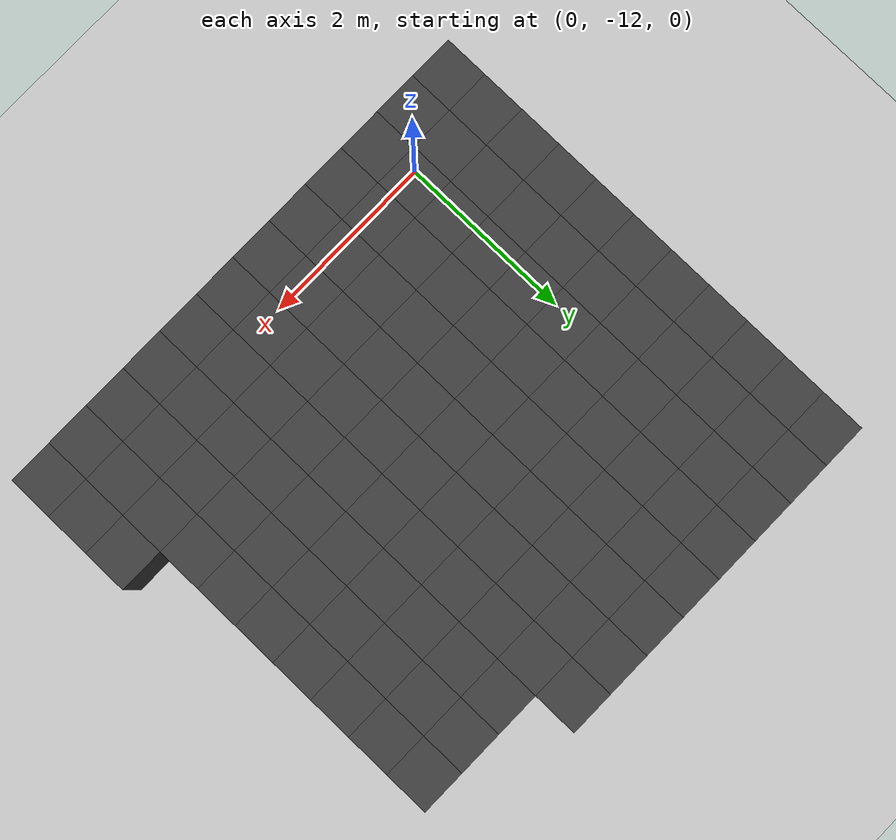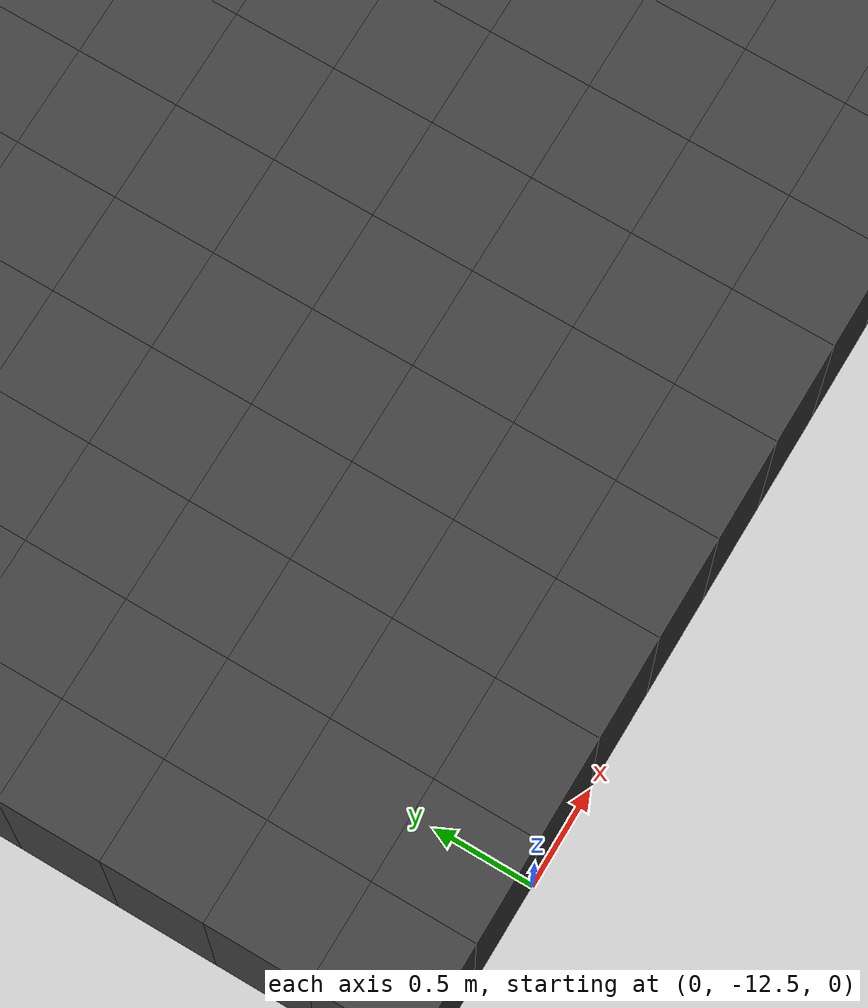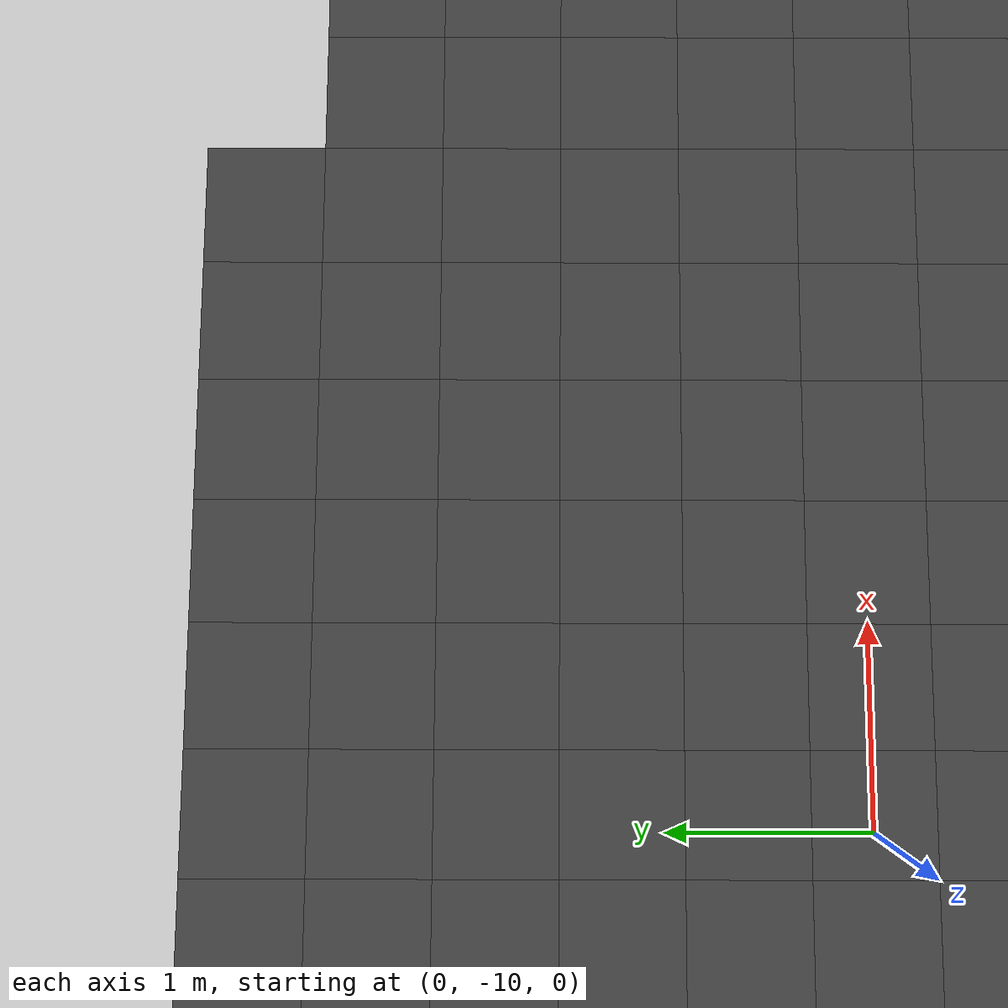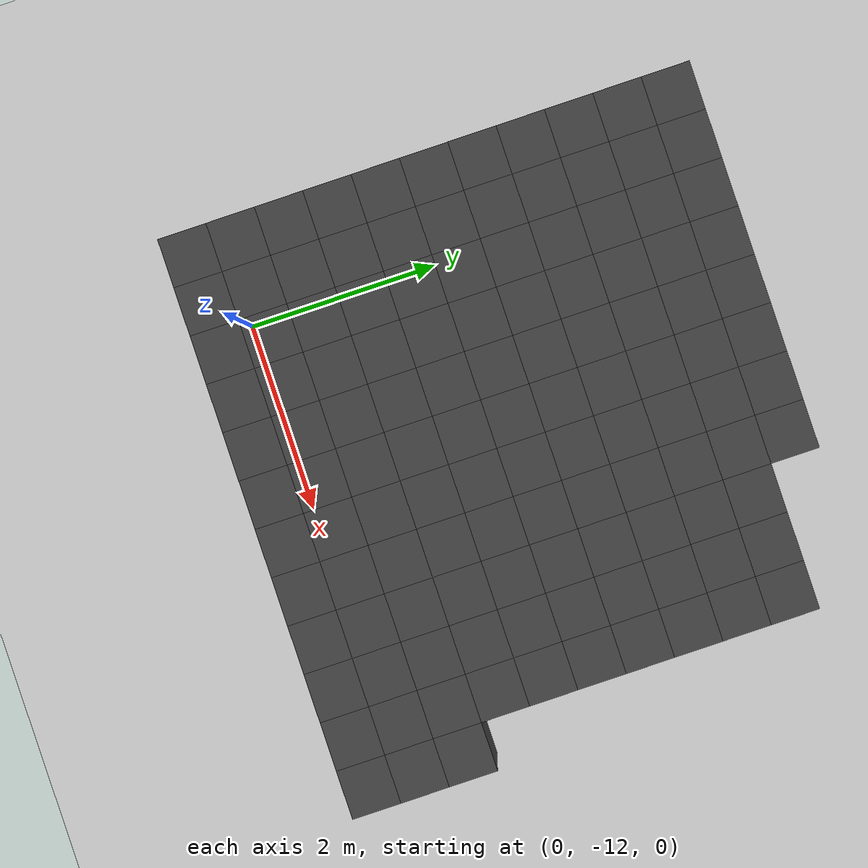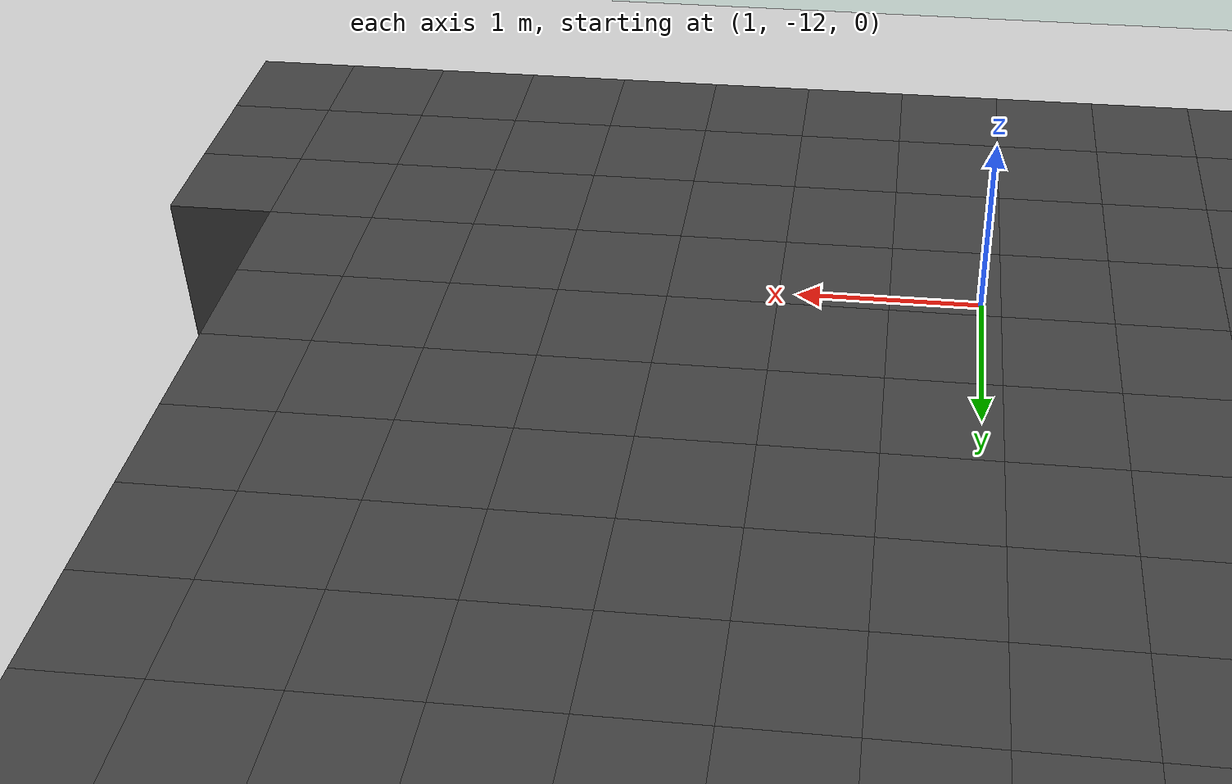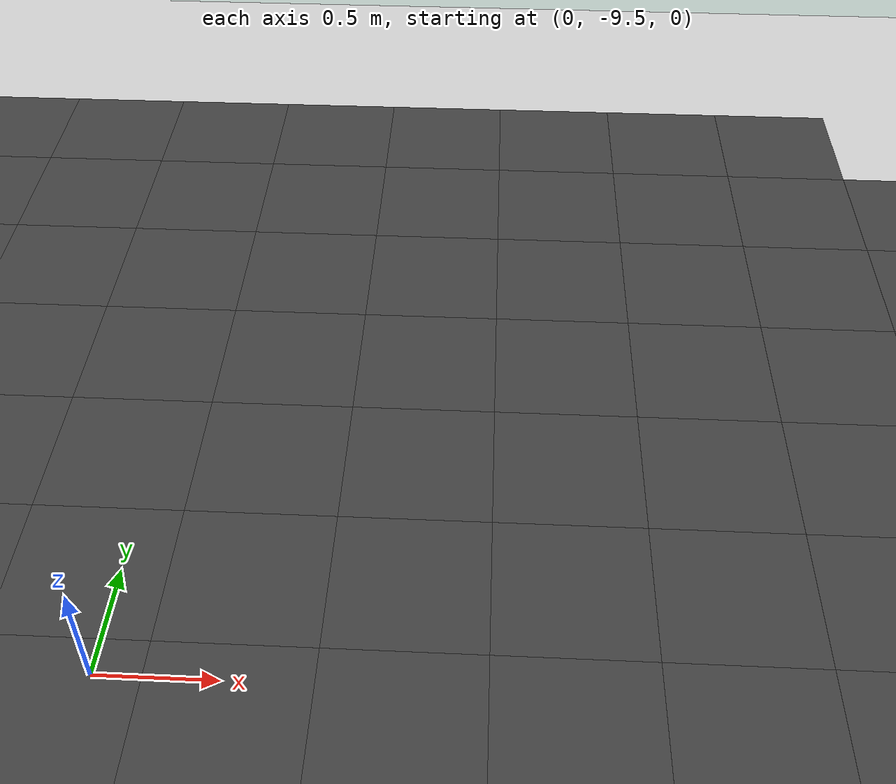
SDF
<sdf version="1.7">
 <world name="map_14706">
  <model name="ground_plane">
   <static>true</static>
   <link name="link">
    <collision name="collision">
     <geometry><plane><normal>0 0 1</normal><size>200 200</size></plane></geometry>
    </collision>
    <visual name="visual">
     <geometry><plane><normal>0 0 1</normal><size>200 200</size></plane></geometry>
     <material><ambient>0.8 0.8 0.8 1</ambient><diffuse>0.8 0.8 0.8 1</diffuse></material>
    </visual>
   </link>
  </model>
  <model name="maze_environment">
   <static>true</static>
   <link name="wall_1406">
    <pose>-0.750 -7.250 0.500 0 0 0</pose>
    <collision name="col"><geometry><box><size>0.5 0.5 1.0</size></box></geometry></collision>
    <visual name="vis">
     <geometry><box><size>0.5 0.5 1.0</size></box></geometry>
     <material><ambient>0.15 0.15 0.15 1</ambient><diffuse>0.25 0.25 0.25 1</diffuse></material>
    </visual>
   </link>
   <link name="wall_1407">
    <pose>-0.250 -7.250 0.500 0 0 0</pose>
    <collision name="col"><geometry><box><size>0.5 0.5 1.0</size></box></geometry></collision>
    <visual name="vis">
     <geometry><box><size>0.5 0.5 1.0</size></box></geometry>
     <material><ambient>0.15 0.15 0.15 1</ambient><diffuse>0.25 0.25 0.25 1</diffuse></material>
    </visual>
   </link>
   <link name="wall_1408">
    <pose>0.250 -7.250 0.500 0 0 0</pose>
    <collision name="col"><geometry><box><size>0.5 0.5 1.0</size></box></geometry></collision>
    <visual name="vis">
     <geometry><box><size>0.5 0.5 1.0</size></box></geometry>
     <material><ambient>0.15 0.15 0.15 1</ambient><diffuse>0.25 0.25 0.25 1</diffuse></material>
    </visual>
   </link>
   <link name="wall_1409">
    <pose>0.750 -7.250 0.500 0 0 0</pose>
    <collision name="col"><geometry><box><size>0.5 0.5 1.0</size></box></geometry></collision>
    <visual name="vis">
     <geometry><box><size>0.5 0.5 1.0</size></box></geometry>
     <material><ambient>0.15 0.15 0.15 1</ambient><diffuse>0.25 0.25 0.25 1</diffuse></material>
    </visual>
   </link>
   <link name="wall_1410">
    <pose>1.250 -7.250 0.500 0 0 0</pose>
    <collision name="col"><geometry><box><size>0.5 0.5 1.0</size></box></geometry></collision>
    <visual name="vis">
     <geometry><box><size>0.5 0.5 1.0</size></box></geometry>
     <material><ambient>0.15 0.15 0.15 1</ambient><diffuse>0.25 0.25 0.25 1</diffuse></material>
    </visual>
   </link>
   <link name="wall_1411">
    <pose>1.750 -7.250 0.500 0 0 0</pose>
    <collision name="col"><geometry><box><size>0.5 0.5 1.0</size></box></geometry></collision>
    <visual name="vis">
     <geometry><box><size>0.5 0.5 1.0</size></box></geometry>
     <material><ambient>0.15 0.15 0.15 1</ambient><diffuse>0.25 0.25 0.25 1</diffuse></material>
    </visual>
   </link>
   <link name="wall_1412">
    <pose>2.250 -7.250 0.500 0 0 0</pose>
    <collision name="col"><geometry><box><size>0.5 0.5 1.0</size></box></geometry></collision>
    <visual name="vis">
     <geometry><box><size>0.5 0.5 1.0</size></box></geometry>
     <material><ambient>0.15 0.15 0.15 1</ambient><diffuse>0.25 0.25 0.25 1</diffuse></material>
    </visual>
   </link>
   <link name="wall_1413">
    <pose>2.750 -7.250 0.500 0 0 0</pose>
    <collision name="col"><geometry><box><size>0.5 0.5 1.0</size></box></geometry></collision>
    <visual name="vis">
     <geometry><box><size>0.5 0.5 1.0</size></box></geometry>
     <material><ambient>0.15 0.15 0.15 1</ambient><diffuse>0.25 0.25 0.25 1</diffuse></material>
    </visual>
   </link>
   <link name="wall_1448">
    <pose>-0.750 -7.750 0.500 0 0 0</pose>
    <collision name="col"><geometry><box><size>0.5 0.5 1.0</size></box></geometry></collision>
    <visual name="vis">
     <geometry><box><size>0.5 0.5 1.0</size></box></geometry>
     <material><ambient>0.15 0.15 0.15 1</ambient><diffuse>0.25 0.25 0.25 1</diffuse></material>
    </visual>
   </link>
   <link name="wall_1449">
    <pose>-0.250 -7.750 0.500 0 0 0</pose>
    <collision name="col"><geometry><box><size>0.5 0.5 1.0</size></box></geometry></collision>
    <visual name="vis">
     <geometry><box><size>0.5 0.5 1.0</size></box></geometry>
     <material><ambient>0.15 0.15 0.15 1</ambient><diffuse>0.25 0.25 0.25 1</diffuse></material>
    </visual>
   </link>
   <link name="wall_1450">
    <pose>0.250 -7.750 0.500 0 0 0</pose>
    <collision name="col"><geometry><box><size>0.5 0.5 1.0</size></box></geometry></collision>
    <visual name="vis">
     <geometry><box><size>0.5 0.5 1.0</size></box></geometry>
     <material><ambient>0.15 0.15 0.15 1</ambient><diffuse>0.25 0.25 0.25 1</diffuse></material>
    </visual>
   </link>
   <link name="wall_1451">
    <pose>0.750 -7.750 0.500 0 0 0</pose>
    <collision name="col"><geometry><box><size>0.5 0.5 1.0</size></box></geometry></collision>
    <visual name="vis">
     <geometry><box><size>0.5 0.5 1.0</size></box></geometry>
     <material><ambient>0.15 0.15 0.15 1</ambient><diffuse>0.25 0.25 0.25 1</diffuse></material>
    </visual>
   </link>
   <link name="wall_1452">
    <pose>1.250 -7.750 0.500 0 0 0</pose>
    <collision name="col"><geometry><box><size>0.5 0.5 1.0</size></box></geometry></collision>
    <visual name="vis">
     <geometry><box><size>0.5 0.5 1.0</size></box></geometry>
     <material><ambient>0.15 0.15 0.15 1</ambient><diffuse>0.25 0.25 0.25 1</diffuse></material>
    </visual>
   </link>
   <link name="wall_1453">
    <pose>1.750 -7.750 0.500 0 0 0</pose>
    <collision name="col"><geometry><box><size>0.5 0.5 1.0</size></box></geometry></collision>
    <visual name="vis">
     <geometry><box><size>0.5 0.5 1.0</size></box></geometry>
     <material><ambient>0.15 0.15 0.15 1</ambient><diffuse>0.25 0.25 0.25 1</diffuse></material>
    </visual>
   </link>
   <link name="wall_1454">
    <pose>2.250 -7.750 0.500 0 0 0</pose>
    <collision name="col"><geometry><box><size>0.5 0.5 1.0</size></box></geometry></collision>
    <visual name="vis">
     <geometry><box><size>0.5 0.5 1.0</size></box></geometry>
     <material><ambient>0.15 0.15 0.15 1</ambient><diffuse>0.25 0.25 0.25 1</diffuse></material>
    </visual>
   </link>
   <link name="wall_1455">
    <pose>2.750 -7.750 0.500 0 0 0</pose>
    <collision name="col"><geometry><box><size>0.5 0.5 1.0</size></box></geometry></collision>
    <visual name="vis">
     <geometry><box><size>0.5 0.5 1.0</size></box></geometry>
     <material><ambient>0.15 0.15 0.15 1</ambient><diffuse>0.25 0.25 0.25 1</diffuse></material>
    </visual>
   </link>
   <link name="wall_1456">
    <pose>3.250 -7.750 0.500 0 0 0</pose>
    <collision name="col"><geometry><box><size>0.5 0.5 1.0</size></box></geometry></collision>
    <visual name="vis">
     <geometry><box><size>0.5 0.5 1.0</size></box></geometry>
     <material><ambient>0.15 0.15 0.15 1</ambient><diffuse>0.25 0.25 0.25 1</diffuse></material>
    </visual>
   </link>
   <link name="wall_1457">
    <pose>3.750 -7.750 0.500 0 0 0</pose>
    <collision name="col"><geometry><box><size>0.5 0.5 1.0</size></box></geometry></collision>
    <visual name="vis">
     <geometry><box><size>0.5 0.5 1.0</size></box></geometry>
     <material><ambient>0.15 0.15 0.15 1</ambient><diffuse>0.25 0.25 0.25 1</diffuse></material>
    </visual>
   </link>
   <link name="wall_1458">
    <pose>4.250 -7.750 0.500 0 0 0</pose>
    <collision name="col"><geometry><box><size>0.5 0.5 1.0</size></box></geometry></collision>
    <visual name="vis">
     <geometry><box><size>0.5 0.5 1.0</size></box></geometry>
     <material><ambient>0.15 0.15 0.15 1</ambient><diffuse>0.25 0.25 0.25 1</diffuse></material>
    </visual>
   </link>
   <link name="wall_1483">
    <pose>-0.750 -8.250 0.500 0 0 0</pose>
    <collision name="col"><geometry><box><size>0.5 0.5 1.0</size></box></geometry></collision>
    <visual name="vis">
     <geometry><box><size>0.5 0.5 1.0</size></box></geometry>
     <material><ambient>0.15 0.15 0.15 1</ambient><diffuse>0.25 0.25 0.25 1</diffuse></material>
    </visual>
   </link>
   <link name="wall_1484">
    <pose>-0.250 -8.250 0.500 0 0 0</pose>
    <collision name="col"><geometry><box><size>0.5 0.5 1.0</size></box></geometry></collision>
    <visual name="vis">
     <geometry><box><size>0.5 0.5 1.0</size></box></geometry>
     <material><ambient>0.15 0.15 0.15 1</ambient><diffuse>0.25 0.25 0.25 1</diffuse></material>
    </visual>
   </link>
   <link name="wall_1485">
    <pose>0.250 -8.250 0.500 0 0 0</pose>
    <collision name="col"><geometry><box><size>0.5 0.5 1.0</size></box></geometry></collision>
    <visual name="vis">
     <geometry><box><size>0.5 0.5 1.0</size></box></geometry>
     <material><ambient>0.15 0.15 0.15 1</ambient><diffuse>0.25 0.25 0.25 1</diffuse></material>
    </visual>
   </link>
   <link name="wall_1486">
    <pose>0.750 -8.250 0.500 0 0 0</pose>
    <collision name="col"><geometry><box><size>0.5 0.5 1.0</size></box></geometry></collision>
    <visual name="vis">
     <geometry><box><size>0.5 0.5 1.0</size></box></geometry>
     <material><ambient>0.15 0.15 0.15 1</ambient><diffuse>0.25 0.25 0.25 1</diffuse></material>
    </visual>
   </link>
   <link name="wall_1487">
    <pose>1.250 -8.250 0.500 0 0 0</pose>
    <collision name="col"><geometry><box><size>0.5 0.5 1.0</size></box></geometry></collision>
    <visual name="vis">
     <geometry><box><size>0.5 0.5 1.0</size></box></geometry>
     <material><ambient>0.15 0.15 0.15 1</ambient><diffuse>0.25 0.25 0.25 1</diffuse></material>
    </visual>
   </link>
   <link name="wall_1488">
    <pose>1.750 -8.250 0.500 0 0 0</pose>
    <collision name="col"><geometry><box><size>0.5 0.5 1.0</size></box></geometry></collision>
    <visual name="vis">
     <geometry><box><size>0.5 0.5 1.0</size></box></geometry>
     <material><ambient>0.15 0.15 0.15 1</ambient><diffuse>0.25 0.25 0.25 1</diffuse></material>
    </visual>
   </link>
   <link name="wall_1489">
    <pose>2.250 -8.250 0.500 0 0 0</pose>
    <collision name="col"><geometry><box><size>0.5 0.5 1.0</size></box></geometry></collision>
    <visual name="vis">
     <geometry><box><size>0.5 0.5 1.0</size></box></geometry>
     <material><ambient>0.15 0.15 0.15 1</ambient><diffuse>0.25 0.25 0.25 1</diffuse></material>
    </visual>
   </link>
   <link name="wall_1490">
    <pose>2.750 -8.250 0.500 0 0 0</pose>
    <collision name="col"><geometry><box><size>0.5 0.5 1.0</size></box></geometry></collision>
    <visual name="vis">
     <geometry><box><size>0.5 0.5 1.0</size></box></geometry>
     <material><ambient>0.15 0.15 0.15 1</ambient><diffuse>0.25 0.25 0.25 1</diffuse></material>
    </visual>
   </link>
   <link name="wall_1491">
    <pose>3.250 -8.250 0.500 0 0 0</pose>
    <collision name="col"><geometry><box><size>0.5 0.5 1.0</size></box></geometry></collision>
    <visual name="vis">
     <geometry><box><size>0.5 0.5 1.0</size></box></geometry>
     <material><ambient>0.15 0.15 0.15 1</ambient><diffuse>0.25 0.25 0.25 1</diffuse></material>
    </visual>
   </link>
   <link name="wall_1492">
    <pose>3.750 -8.250 0.500 0 0 0</pose>
    <collision name="col"><geometry><box><size>0.5 0.5 1.0</size></box></geometry></collision>
    <visual name="vis">
     <geometry><box><size>0.5 0.5 1.0</size></box></geometry>
     <material><ambient>0.15 0.15 0.15 1</ambient><diffuse>0.25 0.25 0.25 1</diffuse></material>
    </visual>
   </link>
   <link name="wall_1493">
    <pose>4.250 -8.250 0.500 0 0 0</pose>
    <collision name="col"><geometry><box><size>0.5 0.5 1.0</size></box></geometry></collision>
    <visual name="vis">
     <geometry><box><size>0.5 0.5 1.0</size></box></geometry>
     <material><ambient>0.15 0.15 0.15 1</ambient><diffuse>0.25 0.25 0.25 1</diffuse></material>
    </visual>
   </link>
   <link name="wall_1518">
    <pose>-0.750 -8.750 0.500 0 0 0</pose>
    <collision name="col"><geometry><box><size>0.5 0.5 1.0</size></box></geometry></collision>
    <visual name="vis">
     <geometry><box><size>0.5 0.5 1.0</size></box></geometry>
     <material><ambient>0.15 0.15 0.15 1</ambient><diffuse>0.25 0.25 0.25 1</diffuse></material>
    </visual>
   </link>
   <link name="wall_1519">
    <pose>-0.250 -8.750 0.500 0 0 0</pose>
    <collision name="col"><geometry><box><size>0.5 0.5 1.0</size></box></geometry></collision>
    <visual name="vis">
     <geometry><box><size>0.5 0.5 1.0</size></box></geometry>
     <material><ambient>0.15 0.15 0.15 1</ambient><diffuse>0.25 0.25 0.25 1</diffuse></material>
    </visual>
   </link>
   <link name="wall_1520">
    <pose>0.250 -8.750 0.500 0 0 0</pose>
    <collision name="col"><geometry><box><size>0.5 0.5 1.0</size></box></geometry></collision>
    <visual name="vis">
     <geometry><box><size>0.5 0.5 1.0</size></box></geometry>
     <material><ambient>0.15 0.15 0.15 1</ambient><diffuse>0.25 0.25 0.25 1</diffuse></material>
    </visual>
   </link>
   <link name="wall_1521">
    <pose>0.750 -8.750 0.500 0 0 0</pose>
    <collision name="col"><geometry><box><size>0.5 0.5 1.0</size></box></geometry></collision>
    <visual name="vis">
     <geometry><box><size>0.5 0.5 1.0</size></box></geometry>
     <material><ambient>0.15 0.15 0.15 1</ambient><diffuse>0.25 0.25 0.25 1</diffuse></material>
    </visual>
   </link>
   <link name="wall_1522">
    <pose>1.250 -8.750 0.500 0 0 0</pose>
    <collision name="col"><geometry><box><size>0.5 0.5 1.0</size></box></geometry></collision>
    <visual name="vis">
     <geometry><box><size>0.5 0.5 1.0</size></box></geometry>
     <material><ambient>0.15 0.15 0.15 1</ambient><diffuse>0.25 0.25 0.25 1</diffuse></material>
    </visual>
   </link>
   <link name="wall_1523">
    <pose>1.750 -8.750 0.500 0 0 0</pose>
    <collision name="col"><geometry><box><size>0.5 0.5 1.0</size></box></geometry></collision>
    <visual name="vis">
     <geometry><box><size>0.5 0.5 1.0</size></box></geometry>
     <material><ambient>0.15 0.15 0.15 1</ambient><diffuse>0.25 0.25 0.25 1</diffuse></material>
    </visual>
   </link>
   <link name="wall_1524">
    <pose>2.250 -8.750 0.500 0 0 0</pose>
    <collision name="col"><geometry><box><size>0.5 0.5 1.0</size></box></geometry></collision>
    <visual name="vis">
     <geometry><box><size>0.5 0.5 1.0</size></box></geometry>
     <material><ambient>0.15 0.15 0.15 1</ambient><diffuse>0.25 0.25 0.25 1</diffuse></material>
    </visual>
   </link>
   <link name="wall_1525">
    <pose>2.750 -8.750 0.500 0 0 0</pose>
    <collision name="col"><geometry><box><size>0.5 0.5 1.0</size></box></geometry></collision>
    <visual name="vis">
     <geometry><box><size>0.5 0.5 1.0</size></box></geometry>
     <material><ambient>0.15 0.15 0.15 1</ambient><diffuse>0.25 0.25 0.25 1</diffuse></material>
    </visual>
   </link>
   <link name="wall_1526">
    <pose>3.250 -8.750 0.500 0 0 0</pose>
    <collision name="col"><geometry><box><size>0.5 0.5 1.0</size></box></geometry></collision>
    <visual name="vis">
     <geometry><box><size>0.5 0.5 1.0</size></box></geometry>
     <material><ambient>0.15 0.15 0.15 1</ambient><diffuse>0.25 0.25 0.25 1</diffuse></material>
    </visual>
   </link>
   <link name="wall_1527">
    <pose>3.750 -8.750 0.500 0 0 0</pose>
    <collision name="col"><geometry><box><size>0.5 0.5 1.0</size></box></geometry></collision>
    <visual name="vis">
     <geometry><box><size>0.5 0.5 1.0</size></box></geometry>
     <material><ambient>0.15 0.15 0.15 1</ambient><diffuse>0.25 0.25 0.25 1</diffuse></material>
    </visual>
   </link>
   <link name="wall_1528">
    <pose>4.250 -8.750 0.500 0 0 0</pose>
    <collision name="col"><geometry><box><size>0.5 0.5 1.0</size></box></geometry></collision>
    <visual name="vis">
     <geometry><box><size>0.5 0.5 1.0</size></box></geometry>
     <material><ambient>0.15 0.15 0.15 1</ambient><diffuse>0.25 0.25 0.25 1</diffuse></material>
    </visual>
   </link>
   <link name="wall_1553">
    <pose>-0.750 -9.250 0.500 0 0 0</pose>
    <collision name="col"><geometry><box><size>0.5 0.5 1.0</size></box></geometry></collision>
    <visual name="vis">
     <geometry><box><size>0.5 0.5 1.0</size></box></geometry>
     <material><ambient>0.15 0.15 0.15 1</ambient><diffuse>0.25 0.25 0.25 1</diffuse></material>
    </visual>
   </link>
   <link name="wall_1554">
    <pose>-0.250 -9.250 0.500 0 0 0</pose>
    <collision name="col"><geometry><box><size>0.5 0.5 1.0</size></box></geometry></collision>
    <visual name="vis">
     <geometry><box><size>0.5 0.5 1.0</size></box></geometry>
     <material><ambient>0.15 0.15 0.15 1</ambient><diffuse>0.25 0.25 0.25 1</diffuse></material>
    </visual>
   </link>
   <link name="wall_1555">
    <pose>0.250 -9.250 0.500 0 0 0</pose>
    <collision name="col"><geometry><box><size>0.5 0.5 1.0</size></box></geometry></collision>
    <visual name="vis">
     <geometry><box><size>0.5 0.5 1.0</size></box></geometry>
     <material><ambient>0.15 0.15 0.15 1</ambient><diffuse>0.25 0.25 0.25 1</diffuse></material>
    </visual>
   </link>
   <link name="wall_1556">
    <pose>0.750 -9.250 0.500 0 0 0</pose>
    <collision name="col"><geometry><box><size>0.5 0.5 1.0</size></box></geometry></collision>
    <visual name="vis">
     <geometry><box><size>0.5 0.5 1.0</size></box></geometry>
     <material><ambient>0.15 0.15 0.15 1</ambient><diffuse>0.25 0.25 0.25 1</diffuse></material>
    </visual>
   </link>
   <link name="wall_1557">
    <pose>1.250 -9.250 0.500 0 0 0</pose>
    <collision name="col"><geometry><box><size>0.5 0.5 1.0</size></box></geometry></collision>
    <visual name="vis">
     <geometry><box><size>0.5 0.5 1.0</size></box></geometry>
     <material><ambient>0.15 0.15 0.15 1</ambient><diffuse>0.25 0.25 0.25 1</diffuse></material>
    </visual>
   </link>
   <link name="wall_1558">
    <pose>1.750 -9.250 0.500 0 0 0</pose>
    <collision name="col"><geometry><box><size>0.5 0.5 1.0</size></box></geometry></collision>
    <visual name="vis">
     <geometry><box><size>0.5 0.5 1.0</size></box></geometry>
     <material><ambient>0.15 0.15 0.15 1</ambient><diffuse>0.25 0.25 0.25 1</diffuse></material>
    </visual>
   </link>
   <link name="wall_1559">
    <pose>2.250 -9.250 0.500 0 0 0</pose>
    <collision name="col"><geometry><box><size>0.5 0.5 1.0</size></box></geometry></collision>
    <visual name="vis">
     <geometry><box><size>0.5 0.5 1.0</size></box></geometry>
     <material><ambient>0.15 0.15 0.15 1</ambient><diffuse>0.25 0.25 0.25 1</diffuse></material>
    </visual>
   </link>
   <link name="wall_1560">
    <pose>2.750 -9.250 0.500 0 0 0</pose>
    <collision name="col"><geometry><box><size>0.5 0.5 1.0</size></box></geometry></collision>
    <visual name="vis">
     <geometry><box><size>0.5 0.5 1.0</size></box></geometry>
     <material><ambient>0.15 0.15 0.15 1</ambient><diffuse>0.25 0.25 0.25 1</diffuse></material>
    </visual>
   </link>
   <link name="wall_1561">
    <pose>3.250 -9.250 0.500 0 0 0</pose>
    <collision name="col"><geometry><box><size>0.5 0.5 1.0</size></box></geometry></collision>
    <visual name="vis">
     <geometry><box><size>0.5 0.5 1.0</size></box></geometry>
     <material><ambient>0.15 0.15 0.15 1</ambient><diffuse>0.25 0.25 0.25 1</diffuse></material>
    </visual>
   </link>
   <link name="wall_1562">
    <pose>3.750 -9.250 0.500 0 0 0</pose>
    <collision name="col"><geometry><box><size>0.5 0.5 1.0</size></box></geometry></collision>
    <visual name="vis">
     <geometry><box><size>0.5 0.5 1.0</size></box></geometry>
     <material><ambient>0.15 0.15 0.15 1</ambient><diffuse>0.25 0.25 0.25 1</diffuse></material>
    </visual>
   </link>
   <link name="wall_1563">
    <pose>4.250 -9.250 0.500 0 0 0</pose>
    <collision name="col"><geometry><box><size>0.5 0.5 1.0</size></box></geometry></collision>
    <visual name="vis">
     <geometry><box><size>0.5 0.5 1.0</size></box></geometry>
     <material><ambient>0.15 0.15 0.15 1</ambient><diffuse>0.25 0.25 0.25 1</diffuse></material>
    </visual>
   </link>
   <link name="wall_1586">
    <pose>-0.750 -9.750 0.500 0 0 0</pose>
    <collision name="col"><geometry><box><size>0.5 0.5 1.0</size></box></geometry></collision>
    <visual name="vis">
     <geometry><box><size>0.5 0.5 1.0</size></box></geometry>
     <material><ambient>0.15 0.15 0.15 1</ambient><diffuse>0.25 0.25 0.25 1</diffuse></material>
    </visual>
   </link>
   <link name="wall_1587">
    <pose>-0.250 -9.750 0.500 0 0 0</pose>
    <collision name="col"><geometry><box><size>0.5 0.5 1.0</size></box></geometry></collision>
    <visual name="vis">
     <geometry><box><size>0.5 0.5 1.0</size></box></geometry>
     <material><ambient>0.15 0.15 0.15 1</ambient><diffuse>0.25 0.25 0.25 1</diffuse></material>
    </visual>
   </link>
   <link name="wall_1588">
    <pose>0.250 -9.750 0.500 0 0 0</pose>
    <collision name="col"><geometry><box><size>0.5 0.5 1.0</size></box></geometry></collision>
    <visual name="vis">
     <geometry><box><size>0.5 0.5 1.0</size></box></geometry>
     <material><ambient>0.15 0.15 0.15 1</ambient><diffuse>0.25 0.25 0.25 1</diffuse></material>
    </visual>
   </link>
   <link name="wall_1589">
    <pose>0.750 -9.750 0.500 0 0 0</pose>
    <collision name="col"><geometry><box><size>0.5 0.5 1.0</size></box></geometry></collision>
    <visual name="vis">
     <geometry><box><size>0.5 0.5 1.0</size></box></geometry>
     <material><ambient>0.15 0.15 0.15 1</ambient><diffuse>0.25 0.25 0.25 1</diffuse></material>
    </visual>
   </link>
   <link name="wall_1590">
    <pose>1.250 -9.750 0.500 0 0 0</pose>
    <collision name="col"><geometry><box><size>0.5 0.5 1.0</size></box></geometry></collision>
    <visual name="vis">
     <geometry><box><size>0.5 0.5 1.0</size></box></geometry>
     <material><ambient>0.15 0.15 0.15 1</ambient><diffuse>0.25 0.25 0.25 1</diffuse></material>
    </visual>
   </link>
   <link name="wall_1591">
    <pose>1.750 -9.750 0.500 0 0 0</pose>
    <collision name="col"><geometry><box><size>0.5 0.5 1.0</size></box></geometry></collision>
    <visual name="vis">
     <geometry><box><size>0.5 0.5 1.0</size></box></geometry>
     <material><ambient>0.15 0.15 0.15 1</ambient><diffuse>0.25 0.25 0.25 1</diffuse></material>
    </visual>
   </link>
   <link name="wall_1592">
    <pose>2.250 -9.750 0.500 0 0 0</pose>
    <collision name="col"><geometry><box><size>0.5 0.5 1.0</size></box></geometry></collision>
    <visual name="vis">
     <geometry><box><size>0.5 0.5 1.0</size></box></geometry>
     <material><ambient>0.15 0.15 0.15 1</ambient><diffuse>0.25 0.25 0.25 1</diffuse></material>
    </visual>
   </link>
   <link name="wall_1593">
    <pose>2.750 -9.750 0.500 0 0 0</pose>
    <collision name="col"><geometry><box><size>0.5 0.5 1.0</size></box></geometry></collision>
    <visual name="vis">
     <geometry><box><size>0.5 0.5 1.0</size></box></geometry>
     <material><ambient>0.15 0.15 0.15 1</ambient><diffuse>0.25 0.25 0.25 1</diffuse></material>
    </visual>
   </link>
   <link name="wall_1594">
    <pose>3.250 -9.750 0.500 0 0 0</pose>
    <collision name="col"><geometry><box><size>0.5 0.5 1.0</size></box></geometry></collision>
    <visual name="vis">
     <geometry><box><size>0.5 0.5 1.0</size></box></geometry>
     <material><ambient>0.15 0.15 0.15 1</ambient><diffuse>0.25 0.25 0.25 1</diffuse></material>
    </visual>
   </link>
   <link name="wall_1595">
    <pose>3.750 -9.750 0.500 0 0 0</pose>
    <collision name="col"><geometry><box><size>0.5 0.5 1.0</size></box></geometry></collision>
    <visual name="vis">
     <geometry><box><size>0.5 0.5 1.0</size></box></geometry>
     <material><ambient>0.15 0.15 0.15 1</ambient><diffuse>0.25 0.25 0.25 1</diffuse></material>
    </visual>
   </link>
   <link name="wall_1596">
    <pose>4.250 -9.750 0.500 0 0 0</pose>
    <collision name="col"><geometry><box><size>0.5 0.5 1.0</size></box></geometry></collision>
    <visual name="vis">
     <geometry><box><size>0.5 0.5 1.0</size></box></geometry>
     <material><ambient>0.15 0.15 0.15 1</ambient><diffuse>0.25 0.25 0.25 1</diffuse></material>
    </visual>
   </link>
   <link name="wall_1622">
    <pose>-0.750 -10.250 0.500 0 0 0</pose>
    <collision name="col"><geometry><box><size>0.5 0.5 1.0</size></box></geometry></collision>
    <visual name="vis">
     <geometry><box><size>0.5 0.5 1.0</size></box></geometry>
     <material><ambient>0.15 0.15 0.15 1</ambient><diffuse>0.25 0.25 0.25 1</diffuse></material>
    </visual>
   </link>
   <link name="wall_1623">
    <pose>-0.250 -10.250 0.500 0 0 0</pose>
    <collision name="col"><geometry><box><size>0.5 0.5 1.0</size></box></geometry></collision>
    <visual name="vis">
     <geometry><box><size>0.5 0.5 1.0</size></box></geometry>
     <material><ambient>0.15 0.15 0.15 1</ambient><diffuse>0.25 0.25 0.25 1</diffuse></material>
    </visual>
   </link>
   <link name="wall_1624">
    <pose>0.250 -10.250 0.500 0 0 0</pose>
    <collision name="col"><geometry><box><size>0.5 0.5 1.0</size></box></geometry></collision>
    <visual name="vis">
     <geometry><box><size>0.5 0.5 1.0</size></box></geometry>
     <material><ambient>0.15 0.15 0.15 1</ambient><diffuse>0.25 0.25 0.25 1</diffuse></material>
    </visual>
   </link>
   <link name="wall_1625">
    <pose>0.750 -10.250 0.500 0 0 0</pose>
    <collision name="col"><geometry><box><size>0.5 0.5 1.0</size></box></geometry></collision>
    <visual name="vis">
     <geometry><box><size>0.5 0.5 1.0</size></box></geometry>
     <material><ambient>0.15 0.15 0.15 1</ambient><diffuse>0.25 0.25 0.25 1</diffuse></material>
    </visual>
   </link>
   <link name="wall_1626">
    <pose>1.250 -10.250 0.500 0 0 0</pose>
    <collision name="col"><geometry><box><size>0.5 0.5 1.0</size></box></geometry></collision>
    <visual name="vis">
     <geometry><box><size>0.5 0.5 1.0</size></box></geometry>
     <material><ambient>0.15 0.15 0.15 1</ambient><diffuse>0.25 0.25 0.25 1</diffuse></material>
    </visual>
   </link>
   <link name="wall_1627">
    <pose>1.750 -10.250 0.500 0 0 0</pose>
    <collision name="col"><geometry><box><size>0.5 0.5 1.0</size></box></geometry></collision>
    <visual name="vis">
     <geometry><box><size>0.5 0.5 1.0</size></box></geometry>
     <material><ambient>0.15 0.15 0.15 1</ambient><diffuse>0.25 0.25 0.25 1</diffuse></material>
    </visual>
   </link>
   <link name="wall_1628">
    <pose>2.250 -10.250 0.500 0 0 0</pose>
    <collision name="col"><geometry><box><size>0.5 0.5 1.0</size></box></geometry></collision>
    <visual name="vis">
     <geometry><box><size>0.5 0.5 1.0</size></box></geometry>
     <material><ambient>0.15 0.15 0.15 1</ambient><diffuse>0.25 0.25 0.25 1</diffuse></material>
    </visual>
   </link>
   <link name="wall_1629">
    <pose>2.750 -10.250 0.500 0 0 0</pose>
    <collision name="col"><geometry><box><size>0.5 0.5 1.0</size></box></geometry></collision>
    <visual name="vis">
     <geometry><box><size>0.5 0.5 1.0</size></box></geometry>
     <material><ambient>0.15 0.15 0.15 1</ambient><diffuse>0.25 0.25 0.25 1</diffuse></material>
    </visual>
   </link>
   <link name="wall_1630">
    <pose>3.250 -10.250 0.500 0 0 0</pose>
    <collision name="col"><geometry><box><size>0.5 0.5 1.0</size></box></geometry></collision>
    <visual name="vis">
     <geometry><box><size>0.5 0.5 1.0</size></box></geometry>
     <material><ambient>0.15 0.15 0.15 1</ambient><diffuse>0.25 0.25 0.25 1</diffuse></material>
    </visual>
   </link>
   <link name="wall_1631">
    <pose>3.750 -10.250 0.500 0 0 0</pose>
    <collision name="col"><geometry><box><size>0.5 0.5 1.0</size></box></geometry></collision>
    <visual name="vis">
     <geometry><box><size>0.5 0.5 1.0</size></box></geometry>
     <material><ambient>0.15 0.15 0.15 1</ambient><diffuse>0.25 0.25 0.25 1</diffuse></material>
    </visual>
   </link>
   <link name="wall_1632">
    <pose>4.250 -10.250 0.500 0 0 0</pose>
    <collision name="col"><geometry><box><size>0.5 0.5 1.0</size></box></geometry></collision>
    <visual name="vis">
     <geometry><box><size>0.5 0.5 1.0</size></box></geometry>
     <material><ambient>0.15 0.15 0.15 1</ambient><diffuse>0.25 0.25 0.25 1</diffuse></material>
    </visual>
   </link>
   <link name="wall_1658">
    <pose>-0.750 -10.750 0.500 0 0 0</pose>
    <collision name="col"><geometry><box><size>0.5 0.5 1.0</size></box></geometry></collision>
    <visual name="vis">
     <geometry><box><size>0.5 0.5 1.0</size></box></geometry>
     <material><ambient>0.15 0.15 0.15 1</ambient><diffuse>0.25 0.25 0.25 1</diffuse></material>
    </visual>
   </link>
   <link name="wall_1659">
    <pose>-0.250 -10.750 0.500 0 0 0</pose>
    <collision name="col"><geometry><box><size>0.5 0.5 1.0</size></box></geometry></collision>
    <visual name="vis">
     <geometry><box><size>0.5 0.5 1.0</size></box></geometry>
     <material><ambient>0.15 0.15 0.15 1</ambient><diffuse>0.25 0.25 0.25 1</diffuse></material>
    </visual>
   </link>
   <link name="wall_1660">
    <pose>0.250 -10.750 0.500 0 0 0</pose>
    <collision name="col"><geometry><box><size>0.5 0.5 1.0</size></box></geometry></collision>
    <visual name="vis">
     <geometry><box><size>0.5 0.5 1.0</size></box></geometry>
     <material><ambient>0.15 0.15 0.15 1</ambient><diffuse>0.25 0.25 0.25 1</diffuse></material>
    </visual>
   </link>
   <link name="wall_1661">
    <pose>0.750 -10.750 0.500 0 0 0</pose>
    <collision name="col"><geometry><box><size>0.5 0.5 1.0</size></box></geometry></collision>
    <visual name="vis">
     <geometry><box><size>0.5 0.5 1.0</size></box></geometry>
     <material><ambient>0.15 0.15 0.15 1</ambient><diffuse>0.25 0.25 0.25 1</diffuse></material>
    </visual>
   </link>
   <link name="wall_1662">
    <pose>1.250 -10.750 0.500 0 0 0</pose>
    <collision name="col"><geometry><box><size>0.5 0.5 1.0</size></box></geometry></collision>
    <visual name="vis">
     <geometry><box><size>0.5 0.5 1.0</size></box></geometry>
     <material><ambient>0.15 0.15 0.15 1</ambient><diffuse>0.25 0.25 0.25 1</diffuse></material>
    </visual>
   </link>
   <link name="wall_1663">
    <pose>1.750 -10.750 0.500 0 0 0</pose>
    <collision name="col"><geometry><box><size>0.5 0.5 1.0</size></box></geometry></collision>
    <visual name="vis">
     <geometry><box><size>0.5 0.5 1.0</size></box></geometry>
     <material><ambient>0.15 0.15 0.15 1</ambient><diffuse>0.25 0.25 0.25 1</diffuse></material>
    </visual>
   </link>
   <link name="wall_1664">
    <pose>2.250 -10.750 0.500 0 0 0</pose>
    <collision name="col"><geometry><box><size>0.5 0.5 1.0</size></box></geometry></collision>
    <visual name="vis">
     <geometry><box><size>0.5 0.5 1.0</size></box></geometry>
     <material><ambient>0.15 0.15 0.15 1</ambient><diffuse>0.25 0.25 0.25 1</diffuse></material>
    </visual>
   </link>
   <link name="wall_1665">
    <pose>2.750 -10.750 0.500 0 0 0</pose>
    <collision name="col"><geometry><box><size>0.5 0.5 1.0</size></box></geometry></collision>
    <visual name="vis">
     <geometry><box><size>0.5 0.5 1.0</size></box></geometry>
     <material><ambient>0.15 0.15 0.15 1</ambient><diffuse>0.25 0.25 0.25 1</diffuse></material>
    </visual>
   </link>
   <link name="wall_1666">
    <pose>3.250 -10.750 0.500 0 0 0</pose>
    <collision name="col"><geometry><box><size>0.5 0.5 1.0</size></box></geometry></collision>
    <visual name="vis">
     <geometry><box><size>0.5 0.5 1.0</size></box></geometry>
     <material><ambient>0.15 0.15 0.15 1</ambient><diffuse>0.25 0.25 0.25 1</diffuse></material>
    </visual>
   </link>
   <link name="wall_1667">
    <pose>3.750 -10.750 0.500 0 0 0</pose>
    <collision name="col"><geometry><box><size>0.5 0.5 1.0</size></box></geometry></collision>
    <visual name="vis">
     <geometry><box><size>0.5 0.5 1.0</size></box></geometry>
     <material><ambient>0.15 0.15 0.15 1</ambient><diffuse>0.25 0.25 0.25 1</diffuse></material>
    </visual>
   </link>
   <link name="wall_1668">
    <pose>4.250 -10.750 0.500 0 0 0</pose>
    <collision name="col"><geometry><box><size>0.5 0.5 1.0</size></box></geometry></collision>
    <visual name="vis">
     <geometry><box><size>0.5 0.5 1.0</size></box></geometry>
     <material><ambient>0.15 0.15 0.15 1</ambient><diffuse>0.25 0.25 0.25 1</diffuse></material>
    </visual>
   </link>
   <link name="wall_1698">
    <pose>-0.750 -11.250 0.500 0 0 0</pose>
    <collision name="col"><geometry><box><size>0.5 0.5 1.0</size></box></geometry></collision>
    <visual name="vis">
     <geometry><box><size>0.5 0.5 1.0</size></box></geometry>
     <material><ambient>0.15 0.15 0.15 1</ambient><diffuse>0.25 0.25 0.25 1</diffuse></material>
    </visual>
   </link>
   <link name="wall_1699">
    <pose>-0.250 -11.250 0.500 0 0 0</pose>
    <collision name="col"><geometry><box><size>0.5 0.5 1.0</size></box></geometry></collision>
    <visual name="vis">
     <geometry><box><size>0.5 0.5 1.0</size></box></geometry>
     <material><ambient>0.15 0.15 0.15 1</ambient><diffuse>0.25 0.25 0.25 1</diffuse></material>
    </visual>
   </link>
   <link name="wall_1700">
    <pose>0.250 -11.250 0.500 0 0 0</pose>
    <collision name="col"><geometry><box><size>0.5 0.5 1.0</size></box></geometry></collision>
    <visual name="vis">
     <geometry><box><size>0.5 0.5 1.0</size></box></geometry>
     <material><ambient>0.15 0.15 0.15 1</ambient><diffuse>0.25 0.25 0.25 1</diffuse></material>
    </visual>
   </link>
   <link name="wall_1701">
    <pose>0.750 -11.250 0.500 0 0 0</pose>
    <collision name="col"><geometry><box><size>0.5 0.5 1.0</size></box></geometry></collision>
    <visual name="vis">
     <geometry><box><size>0.5 0.5 1.0</size></box></geometry>
     <material><ambient>0.15 0.15 0.15 1</ambient><diffuse>0.25 0.25 0.25 1</diffuse></material>
    </visual>
   </link>
   <link name="wall_1702">
    <pose>1.250 -11.250 0.500 0 0 0</pose>
    <collision name="col"><geometry><box><size>0.5 0.5 1.0</size></box></geometry></collision>
    <visual name="vis">
     <geometry><box><size>0.5 0.5 1.0</size></box></geometry>
     <material><ambient>0.15 0.15 0.15 1</ambient><diffuse>0.25 0.25 0.25 1</diffuse></material>
    </visual>
   </link>
   <link name="wall_1703">
    <pose>1.750 -11.250 0.500 0 0 0</pose>
    <collision name="col"><geometry><box><size>0.5 0.5 1.0</size></box></geometry></collision>
    <visual name="vis">
     <geometry><box><size>0.5 0.5 1.0</size></box></geometry>
     <material><ambient>0.15 0.15 0.15 1</ambient><diffuse>0.25 0.25 0.25 1</diffuse></material>
    </visual>
   </link>
   <link name="wall_1704">
    <pose>2.250 -11.250 0.500 0 0 0</pose>
    <collision name="col"><geometry><box><size>0.5 0.5 1.0</size></box></geometry></collision>
    <visual name="vis">
     <geometry><box><size>0.5 0.5 1.0</size></box></geometry>
     <material><ambient>0.15 0.15 0.15 1</ambient><diffuse>0.25 0.25 0.25 1</diffuse></material>
    </visual>
   </link>
   <link name="wall_1705">
    <pose>2.750 -11.250 0.500 0 0 0</pose>
    <collision name="col"><geometry><box><size>0.5 0.5 1.0</size></box></geometry></collision>
    <visual name="vis">
     <geometry><box><size>0.5 0.5 1.0</size></box></geometry>
     <material><ambient>0.15 0.15 0.15 1</ambient><diffuse>0.25 0.25 0.25 1</diffuse></material>
    </visual>
   </link>
   <link name="wall_1706">
    <pose>3.250 -11.250 0.500 0 0 0</pose>
    <collision name="col"><geometry><box><size>0.5 0.5 1.0</size></box></geometry></collision>
    <visual name="vis">
     <geometry><box><size>0.5 0.5 1.0</size></box></geometry>
     <material><ambient>0.15 0.15 0.15 1</ambient><diffuse>0.25 0.25 0.25 1</diffuse></material>
    </visual>
   </link>
   <link name="wall_1707">
    <pose>3.750 -11.250 0.500 0 0 0</pose>
    <collision name="col"><geometry><box><size>0.5 0.5 1.0</size></box></geometry></collision>
    <visual name="vis">
     <geometry><box><size>0.5 0.5 1.0</size></box></geometry>
     <material><ambient>0.15 0.15 0.15 1</ambient><diffuse>0.25 0.25 0.25 1</diffuse></material>
    </visual>
   </link>
   <link name="wall_1708">
    <pose>4.250 -11.250 0.500 0 0 0</pose>
    <collision name="col"><geometry><box><size>0.5 0.5 1.0</size></box></geometry></collision>
    <visual name="vis">
     <geometry><box><size>0.5 0.5 1.0</size></box></geometry>
     <material><ambient>0.15 0.15 0.15 1</ambient><diffuse>0.25 0.25 0.25 1</diffuse></material>
    </visual>
   </link>
   <link name="wall_1709">
    <pose>4.750 -11.250 0.500 0 0 0</pose>
    <collision name="col"><geometry><box><size>0.5 0.5 1.0</size></box></geometry></collision>
    <visual name="vis">
     <geometry><box><size>0.5 0.5 1.0</size></box></geometry>
     <material><ambient>0.15 0.15 0.15 1</ambient><diffuse>0.25 0.25 0.25 1</diffuse></material>
    </visual>
   </link>
   <link name="wall_1740">
    <pose>-0.750 -11.750 0.500 0 0 0</pose>
    <collision name="col"><geometry><box><size>0.5 0.5 1.0</size></box></geometry></collision>
    <visual name="vis">
     <geometry><box><size>0.5 0.5 1.0</size></box></geometry>
     <material><ambient>0.15 0.15 0.15 1</ambient><diffuse>0.25 0.25 0.25 1</diffuse></material>
    </visual>
   </link>
   <link name="wall_1741">
    <pose>-0.250 -11.750 0.500 0 0 0</pose>
    <collision name="col"><geometry><box><size>0.5 0.5 1.0</size></box></geometry></collision>
    <visual name="vis">
     <geometry><box><size>0.5 0.5 1.0</size></box></geometry>
     <material><ambient>0.15 0.15 0.15 1</ambient><diffuse>0.25 0.25 0.25 1</diffuse></material>
    </visual>
   </link>
   <link name="wall_1742">
    <pose>0.250 -11.750 0.500 0 0 0</pose>
    <collision name="col"><geometry><box><size>0.5 0.5 1.0</size></box></geometry></collision>
    <visual name="vis">
     <geometry><box><size>0.5 0.5 1.0</size></box></geometry>
     <material><ambient>0.15 0.15 0.15 1</ambient><diffuse>0.25 0.25 0.25 1</diffuse></material>
    </visual>
   </link>
   <link name="wall_1743">
    <pose>0.750 -11.750 0.500 0 0 0</pose>
    <collision name="col"><geometry><box><size>0.5 0.5 1.0</size></box></geometry></collision>
    <visual name="vis">
     <geometry><box><size>0.5 0.5 1.0</size></box></geometry>
     <material><ambient>0.15 0.15 0.15 1</ambient><diffuse>0.25 0.25 0.25 1</diffuse></material>
    </visual>
   </link>
   <link name="wall_1744">
    <pose>1.250 -11.750 0.500 0 0 0</pose>
    <collision name="col"><geometry><box><size>0.5 0.5 1.0</size></box></geometry></collision>
    <visual name="vis">
     <geometry><box><size>0.5 0.5 1.0</size></box></geometry>
     <material><ambient>0.15 0.15 0.15 1</ambient><diffuse>0.25 0.25 0.25 1</diffuse></material>
    </visual>
   </link>
   <link name="wall_1745">
    <pose>1.750 -11.750 0.500 0 0 0</pose>
    <collision name="col"><geometry><box><size>0.5 0.5 1.0</size></box></geometry></collision>
    <visual name="vis">
     <geometry><box><size>0.5 0.5 1.0</size></box></geometry>
     <material><ambient>0.15 0.15 0.15 1</ambient><diffuse>0.25 0.25 0.25 1</diffuse></material>
    </visual>
   </link>
   <link name="wall_1746">
    <pose>2.250 -11.750 0.500 0 0 0</pose>
    <collision name="col"><geometry><box><size>0.5 0.5 1.0</size></box></geometry></collision>
    <visual name="vis">
     <geometry><box><size>0.5 0.5 1.0</size></box></geometry>
     <material><ambient>0.15 0.15 0.15 1</ambient><diffuse>0.25 0.25 0.25 1</diffuse></material>
    </visual>
   </link>
   <link name="wall_1747">
    <pose>2.750 -11.750 0.500 0 0 0</pose>
    <collision name="col"><geometry><box><size>0.5 0.5 1.0</size></box></geometry></collision>
    <visual name="vis">
     <geometry><box><size>0.5 0.5 1.0</size></box></geometry>
     <material><ambient>0.15 0.15 0.15 1</ambient><diffuse>0.25 0.25 0.25 1</diffuse></material>
    </visual>
   </link>
   <link name="wall_1748">
    <pose>3.250 -11.750 0.500 0 0 0</pose>
    <collision name="col"><geometry><box><size>0.5 0.5 1.0</size></box></geometry></collision>
    <visual name="vis">
     <geometry><box><size>0.5 0.5 1.0</size></box></geometry>
     <material><ambient>0.15 0.15 0.15 1</ambient><diffuse>0.25 0.25 0.25 1</diffuse></material>
    </visual>
   </link>
   <link name="wall_1749">
    <pose>3.750 -11.750 0.500 0 0 0</pose>
    <collision name="col"><geometry><box><size>0.5 0.5 1.0</size></box></geometry></collision>
    <visual name="vis">
     <geometry><box><size>0.5 0.5 1.0</size></box></geometry>
     <material><ambient>0.15 0.15 0.15 1</ambient><diffuse>0.25 0.25 0.25 1</diffuse></material>
    </visual>
   </link>
   <link name="wall_1750">
    <pose>4.250 -11.750 0.500 0 0 0</pose>
    <collision name="col"><geometry><box><size>0.5 0.5 1.0</size></box></geometry></collision>
    <visual name="vis">
     <geometry><box><size>0.5 0.5 1.0</size></box></geometry>
     <material><ambient>0.15 0.15 0.15 1</ambient><diffuse>0.25 0.25 0.25 1</diffuse></material>
    </visual>
   </link>
   <link name="wall_1751">
    <pose>4.750 -11.750 0.500 0 0 0</pose>
    <collision name="col"><geometry><box><size>0.5 0.5 1.0</size></box></geometry></collision>
    <visual name="vis">
     <geometry><box><size>0.5 0.5 1.0</size></box></geometry>
     <material><ambient>0.15 0.15 0.15 1</ambient><diffuse>0.25 0.25 0.25 1</diffuse></material>
    </visual>
   </link>
   <link name="wall_1787">
    <pose>-0.750 -12.250 0.500 0 0 0</pose>
    <collision name="col"><geometry><box><size>0.5 0.5 1.0</size></box></geometry></collision>
    <visual name="vis">
     <geometry><box><size>0.5 0.5 1.0</size></box></geometry>
     <material><ambient>0.15 0.15 0.15 1</ambient><diffuse>0.25 0.25 0.25 1</diffuse></material>
    </visual>
   </link>
   <link name="wall_1788">
    <pose>-0.250 -12.250 0.500 0 0 0</pose>
    <collision name="col"><geometry><box><size>0.5 0.5 1.0</size></box></geometry></collision>
    <visual name="vis">
     <geometry><box><size>0.5 0.5 1.0</size></box></geometry>
     <material><ambient>0.15 0.15 0.15 1</ambient><diffuse>0.25 0.25 0.25 1</diffuse></material>
    </visual>
   </link>
   <link name="wall_1789">
    <pose>0.250 -12.250 0.500 0 0 0</pose>
    <collision name="col"><geometry><box><size>0.5 0.5 1.0</size></box></geometry></collision>
    <visual name="vis">
     <geometry><box><size>0.5 0.5 1.0</size></box></geometry>
     <material><ambient>0.15 0.15 0.15 1</ambient><diffuse>0.25 0.25 0.25 1</diffuse></material>
    </visual>
   </link>
   <link name="wall_1790">
    <pose>0.750 -12.250 0.500 0 0 0</pose>
    <collision name="col"><geometry><box><size>0.5 0.5 1.0</size></box></geometry></collision>
    <visual name="vis">
     <geometry><box><size>0.5 0.5 1.0</size></box></geometry>
     <material><ambient>0.15 0.15 0.15 1</ambient><diffuse>0.25 0.25 0.25 1</diffuse></material>
    </visual>
   </link>
   <link name="wall_1791">
    <pose>1.250 -12.250 0.500 0 0 0</pose>
    <collision name="col"><geometry><box><size>0.5 0.5 1.0</size></box></geometry></collision>
    <visual name="vis">
     <geometry><box><size>0.5 0.5 1.0</size></box></geometry>
     <material><ambient>0.15 0.15 0.15 1</ambient><diffuse>0.25 0.25 0.25 1</diffuse></material>
    </visual>
   </link>
   <link name="wall_1792">
    <pose>1.750 -12.250 0.500 0 0 0</pose>
    <collision name="col"><geometry><box><size>0.5 0.5 1.0</size></box></geometry></collision>
    <visual name="vis">
     <geometry><box><size>0.5 0.5 1.0</size></box></geometry>
     <material><ambient>0.15 0.15 0.15 1</ambient><diffuse>0.25 0.25 0.25 1</diffuse></material>
    </visual>
   </link>
   <link name="wall_1793">
    <pose>2.250 -12.250 0.500 0 0 0</pose>
    <collision name="col"><geometry><box><size>0.5 0.5 1.0</size></box></geometry></collision>
    <visual name="vis">
     <geometry><box><size>0.5 0.5 1.0</size></box></geometry>
     <material><ambient>0.15 0.15 0.15 1</ambient><diffuse>0.25 0.25 0.25 1</diffuse></material>
    </visual>
   </link>
   <link name="wall_1794">
    <pose>2.750 -12.250 0.500 0 0 0</pose>
    <collision name="col"><geometry><box><size>0.5 0.5 1.0</size></box></geometry></collision>
    <visual name="vis">
     <geometry><box><size>0.5 0.5 1.0</size></box></geometry>
     <material><ambient>0.15 0.15 0.15 1</ambient><diffuse>0.25 0.25 0.25 1</diffuse></material>
    </visual>
   </link>
   <link name="wall_1795">
    <pose>3.250 -12.250 0.500 0 0 0</pose>
    <collision name="col"><geometry><box><size>0.5 0.5 1.0</size></box></geometry></collision>
    <visual name="vis">
     <geometry><box><size>0.5 0.5 1.0</size></box></geometry>
     <material><ambient>0.15 0.15 0.15 1</ambient><diffuse>0.25 0.25 0.25 1</diffuse></material>
    </visual>
   </link>
   <link name="wall_1796">
    <pose>3.750 -12.250 0.500 0 0 0</pose>
    <collision name="col"><geometry><box><size>0.5 0.5 1.0</size></box></geometry></collision>
    <visual name="vis">
     <geometry><box><size>0.5 0.5 1.0</size></box></geometry>
     <material><ambient>0.15 0.15 0.15 1</ambient><diffuse>0.25 0.25 0.25 1</diffuse></material>
    </visual>
   </link>
   <link name="wall_1797">
    <pose>4.250 -12.250 0.500 0 0 0</pose>
    <collision name="col"><geometry><box><size>0.5 0.5 1.0</size></box></geometry></collision>
    <visual name="vis">
     <geometry><box><size>0.5 0.5 1.0</size></box></geometry>
     <material><ambient>0.15 0.15 0.15 1</ambient><diffuse>0.25 0.25 0.25 1</diffuse></material>
    </visual>
   </link>
   <link name="wall_1798">
    <pose>4.750 -12.250 0.500 0 0 0</pose>
    <collision name="col"><geometry><box><size>0.5 0.5 1.0</size></box></geometry></collision>
    <visual name="vis">
     <geometry><box><size>0.5 0.5 1.0</size></box></geometry>
     <material><ambient>0.15 0.15 0.15 1</ambient><diffuse>0.25 0.25 0.25 1</diffuse></material>
    </visual>
   </link>
  </model>
 </world>
</sdf>
